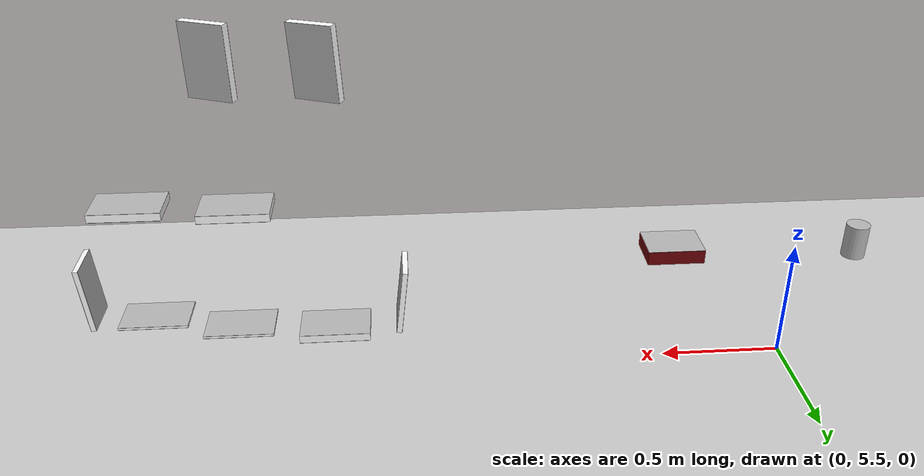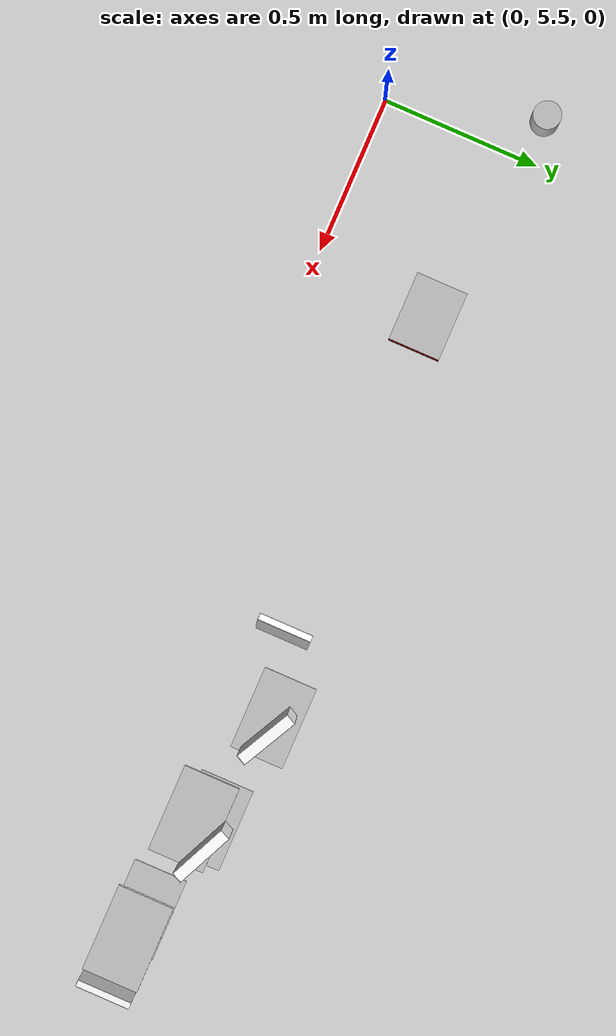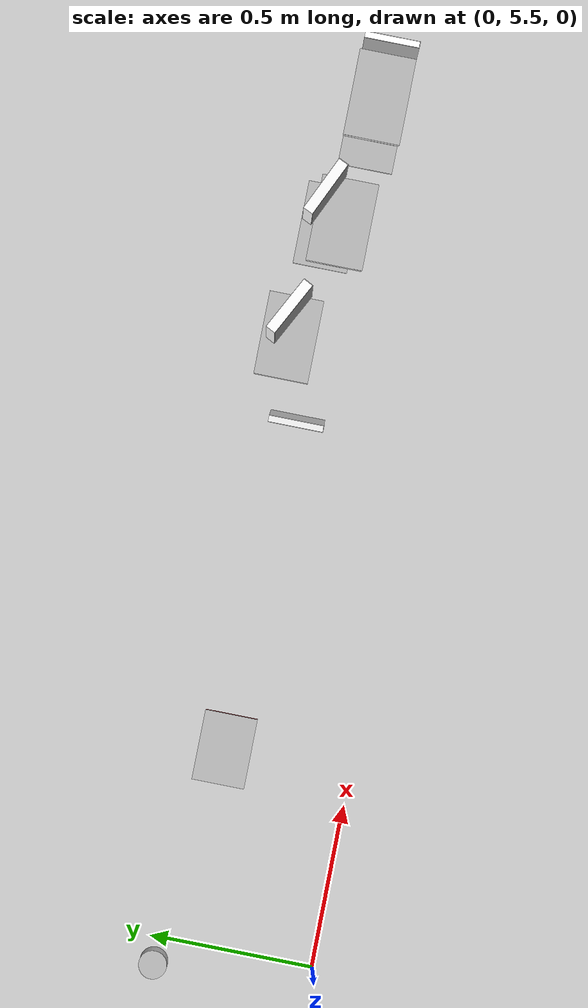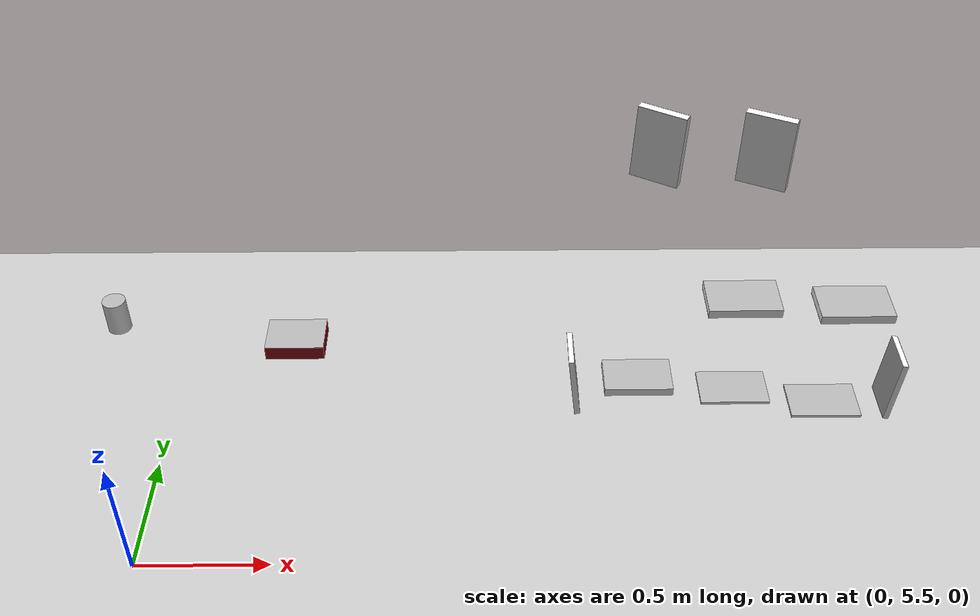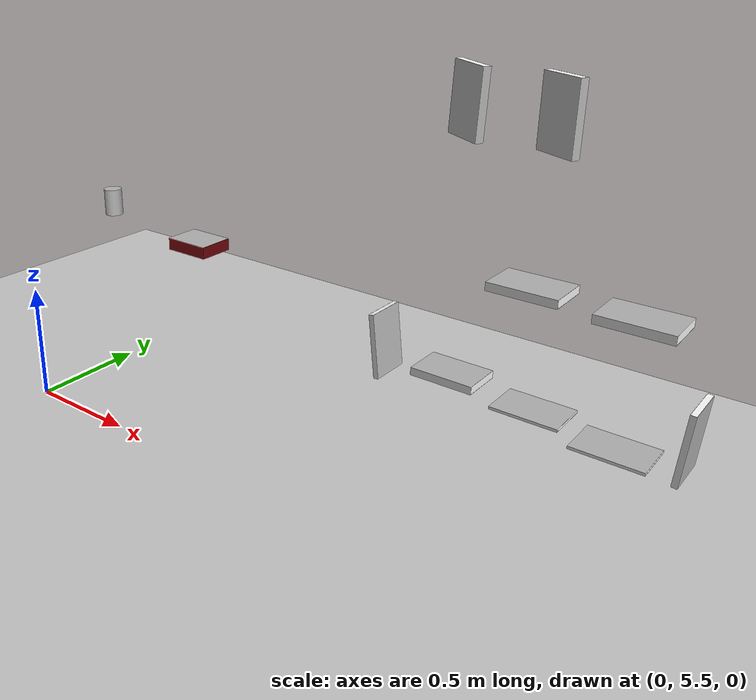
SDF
<sdf version="1.6">
 <world name="default">
  <model name="ground_plane">
   <static>1</static>
   <link name="link">
    <collision name="collision">
     <geometry><plane><normal>0 0 1</normal><size>100 100</size></plane></geometry>
     <surface>
      <contact><collide_bitmask>65535</collide_bitmask></contact>
      <friction><ode><mu>100</mu><mu2>50</mu2></ode></friction>
     </surface>
    </collision>
    <visual name="visual">
     <cast_shadows>0</cast_shadows>
     <geometry><plane><normal>0 0 1</normal><size>100 100</size></plane></geometry>
     <material>
      <script><uri>file://media/materials/scripts/gazebo.material</uri><name>Gazebo/Grey</name></script>
     </material>
    </visual>
   </link>
  </model>
  <model name="book_19">
   <link name="cover">
    <pose>0 -0.000108 0.015405 0 -0 0</pose>
    <visual name="visual">
     <geometry><box><size>0.245 0.16 0.03</size></box></geometry>
     <material>
      <script>
       <uri>model://book_19/materials/scripts</uri>
       <uri>model://book_19/materials/textures</uri>
       <name>book_19</name>
      </script>
     </material>
    </visual>
    <collision name="collision"><geometry><box><size>0.245 0.16 0.03</size></box></geometry></collision>
   </link>
   <link name="page">
    <pose>0 0.000608 0.015405 0 -0 0</pose>
    <visual name="visual">
     <geometry><box><size>0.24502 0.15862 0.028</size></box></geometry>
     <material>
      <lighting>1</lighting>
      <ambient>1 1 1 1</ambient>
      <diffuse>1 1 1 1</diffuse>
      <specular>0.01 0.01 0.01 1</specular>
      <emissive>0 0 0 1</emissive>
      <shader type="vertex"><normal_map>__default__</normal_map></shader>
     </material>
    </visual>
    <collision name="collision"><geometry><box><size>0.245 0.16 0.03</size></box></geometry></collision>
   </link>
   <static>1</static>
   <pose>2.16494 5.92603 1.48393 1.13971 -1.55591 -2e-06</pose>
  </model>
  <model name="book_13">
   <link name="cover">
    <pose>0 -0.000108 0.015405 0 -0 0</pose>
    <visual name="visual">
     <geometry><box><size>0.245 0.16 0.03</size></box></geometry>
     <material>
      <script>
       <uri>model://book_13/materials/scripts</uri>
       <uri>model://book_13/materials/textures</uri>
       <name>book_13</name>
      </script>
     </material>
    </visual>
    <collision name="collision"><geometry><box><size>0.245 0.16 0.03</size></box></geometry></collision>
   </link>
   <link name="page">
    <pose>0 0.000608 0.015405 0 -0 0</pose>
    <visual name="visual">
     <geometry><box><size>0.24502 0.15862 0.028</size></box></geometry>
     <material>
      <lighting>1</lighting>
      <ambient>1 1 1 1</ambient>
      <diffuse>1 1 1 1</diffuse>
      <specular>0.01 0.01 0.01 1</specular>
      <emissive>0 0 0 1</emissive>
      <shader type="vertex"><normal_map>__default__</normal_map></shader>
     </material>
    </visual>
    <collision name="collision"><geometry><box><size>0.245 0.16 0.03</size></box></geometry></collision>
   </link>
   <static>1</static>
   <pose>1.83674 5.95705 1.4833 0.931031 -1.5254 0.162157</pose>
  </model>
  <model name="book_10_0">
   <link name="cover">
    <pose>0 -0.000108 0.015405 0 -0 0</pose>
    <visual name="visual">
     <geometry><box><size>0.245 0.16 0.03</size></box></geometry>
     <material>
      <script>
       <uri>model://book_10/materials/scripts</uri>
       <uri>model://book_10/materials/textures</uri>
       <name>book_10</name>
      </script>
     </material>
    </visual>
    <collision name="collision"><geometry><box><size>0.245 0.16 0.03</size></box></geometry></collision>
   </link>
   <link name="page">
    <pose>0 0.000608 0.015405 0 -0 0</pose>
    <visual name="visual">
     <geometry><box><size>0.24502 0.15862 0.028</size></box></geometry>
     <material>
      <lighting>1</lighting>
      <ambient>1 1 1 1</ambient>
      <diffuse>1 1 1 1</diffuse>
      <specular>0.01 0.01 0.01 1</specular>
      <emissive>0 0 0 1</emissive>
      <shader type="vertex"><normal_map>__default__</normal_map></shader>
     </material>
    </visual>
    <collision name="collision"><geometry><box><size>0.245 0.16 0.03</size></box></geometry></collision>
   </link>
   <static>1</static>
   <pose>2.50783 5.81692 0.928012 0 -0 0</pose>
  </model>
  <model name="book_12">
   <link name="cover">
    <pose>0 -0.000108 0.015405 0 -0 0</pose>
    <visual name="visual">
     <geometry><box><size>0.245 0.16 0.03</size></box></geometry>
     <material>
      <script>
       <uri>model://book_12/materials/scripts</uri>
       <uri>model://book_12/materials/textures</uri>
       <name>book_12</name>
      </script>
     </material>
    </visual>
    <collision name="collision"><geometry><box><size>0.245 0.16 0.03</size></box></geometry></collision>
   </link>
   <link name="page">
    <pose>0 0.000608 0.015405 0 -0 0</pose>
    <visual name="visual">
     <geometry><box><size>0.24502 0.15862 0.028</size></box></geometry>
     <material>
      <lighting>1</lighting>
      <ambient>1 1 1 1</ambient>
      <diffuse>1 1 1 1</diffuse>
      <specular>0.01 0.01 0.01 1</specular>
      <emissive>0 0 0 1</emissive>
      <shader type="vertex"><normal_map>__default__</normal_map></shader>
     </material>
    </visual>
    <collision name="collision"><geometry><box><size>0.245 0.16 0.03</size></box></geometry></collision>
   </link>
   <static>1</static>
   <pose>2.14346 5.85092 0.928127 0 -0 0</pose>
  </model>
  <model name="book_9">
   <link name="cover">
    <pose>0 -0.000108 0.005 0 -0 0</pose>
    <visual name="visual">
     <geometry><box><size>0.245 0.16 0.01</size></box></geometry>
     <material>
      <script>
       <uri>model://book_9/materials/scripts</uri>
       <uri>model://book_9/materials/textures</uri>
       <name>book_9</name>
      </script>
     </material>
    </visual>
    <collision name="collision"><geometry><box><size>0.245 0.16 0.01</size></box></geometry></collision>
   </link>
   <link name="page">
    <pose>0 0.000608 0.005 0 -0 0</pose>
    <visual name="visual">
     <geometry><box><size>0.24502 0.15862 0.008</size></box></geometry>
     <material>
      <lighting>1</lighting>
      <ambient>1 1 1 1</ambient>
      <diffuse>1 1 1 1</diffuse>
      <specular>0.01 0.01 0.01 1</specular>
      <emissive>0 0 0 1</emissive>
      <shader type="vertex"><normal_map>__default__</normal_map></shader>
     </material>
    </visual>
    <collision name="collision"><geometry><box><size>0.245 0.16 0.008</size></box></geometry></collision>
   </link>
   <static>1</static>
   <pose>2.47861 5.81701 0.496004 0 -0 0</pose>
  </model>
  <model name="book_7">
   <link name="cover">
    <pose>0 -0.000108 0.005 0 -0 0</pose>
    <visual name="visual">
     <geometry><box><size>0.245 0.16 0.01</size></box></geometry>
     <material>
      <script>
       <uri>model://book_7/materials/scripts</uri>
       <uri>model://book_7/materials/textures</uri>
       <name>book_7</name>
      </script>
     </material>
    </visual>
    <collision name="collision"><geometry><box><size>0.245 0.16 0.01</size></box></geometry></collision>
   </link>
   <link name="page">
    <pose>0 0.000608 0.005 0 -0 0</pose>
    <visual name="visual">
     <geometry><box><size>0.24502 0.15862 0.008</size></box></geometry>
     <material>
      <lighting>1</lighting>
      <ambient>1 1 1 1</ambient>
      <diffuse>1 1 1 1</diffuse>
      <specular>0.01 0.01 0.01 1</specular>
      <emissive>0 0 0 1</emissive>
      <shader type="vertex"><normal_map>__default__</normal_map></shader>
     </material>
    </visual>
    <collision name="collision"><geometry><box><size>0.245 0.16 0.008</size></box></geometry></collision>
   </link>
   <static>1</static>
   <pose>2.16952 5.88911 0.494583 0 -0 0</pose>
  </model>
  <model name="book_2">
   <link name="cover">
    <pose>0 -0.000108 0.015405 0 -0 0</pose>
    <visual name="visual">
     <geometry><box><size>0.245 0.16 0.03</size></box></geometry>
     <material>
      <script>
       <uri>model://book_2/materials/scripts</uri>
       <uri>model://book_2/materials/textures</uri>
       <name>book_2</name>
      </script>
     </material>
    </visual>
    <collision name="collision"><geometry><box><size>0.245 0.16 0.03</size></box></geometry></collision>
   </link>
   <link name="page">
    <pose>0 0.000608 0.015405 0 -0 0</pose>
    <visual name="visual">
     <geometry><box><size>0.24502 0.15862 0.028</size></box></geometry>
     <material>
      <lighting>1</lighting>
      <ambient>1 1 1 1</ambient>
      <diffuse>1 1 1 1</diffuse>
      <specular>0.01 0.01 0.01 1</specular>
      <emissive>0 0 0 1</emissive>
      <shader type="vertex"><normal_map>__default__</normal_map></shader>
     </material>
    </visual>
    <collision name="collision"><geometry><box><size>0.245 0.16 0.03</size></box></geometry></collision>
   </link>
   <static>1</static>
   <pose>1.83068 5.93821 0.492808 0 -0 0</pose>
  </model>
  <model name="book_6">
   <link name="cover">
    <pose>0 -0.000108 0.01 0 -0 0</pose>
    <visual name="visual">
     <geometry><box><size>0.245 0.16 0.02</size></box></geometry>
     <material>
      <script>
       <uri>model://book_6/materials/scripts</uri>
       <uri>model://book_6/materials/textures</uri>
       <name>book_6</name>
      </script>
     </material>
    </visual>
    <collision name="collision"><geometry><box><size>0.245 0.16 0.02</size></box></geometry></collision>
   </link>
   <link name="page">
    <pose>0 0.000608 0.01 0 -0 0</pose>
    <visual name="visual">
     <geometry><box><size>0.24502 0.15862 0.018</size></box></geometry>
     <material>
      <lighting>1</lighting>
      <ambient>1 1 1 1</ambient>
      <diffuse>1 1 1 1</diffuse>
      <specular>0.01 0.01 0.01 1</specular>
      <emissive>0 0 0 1</emissive>
      <shader type="vertex"><normal_map>__default__</normal_map></shader>
     </material>
    </visual>
    <collision name="collision"><geometry><box><size>0.245 0.16 0.018</size></box></geometry></collision>
   </link>
   <static>1</static>
   <pose>2.70628 5.81202 0.615196 0 -1.48664 0</pose>
  </model>
  <model name="book_4">
   <link name="cover">
    <pose>0 -0.000108 0.01 0 -0 0</pose>
    <visual name="visual">
     <geometry><box><size>0.245 0.16 0.02</size></box></geometry>
     <material>
      <script>
       <uri>model://book_4/materials/scripts</uri>
       <uri>model://book_4/materials/textures</uri>
       <name>book_4</name>
      </script>
     </material>
     <cast_shadows>0</cast_shadows>
    </visual>
    <collision name="collision"><geometry><box><size>0.245 0.16 0.02</size></box></geometry></collision>
   </link>
   <link name="page">
    <pose>0 0.000608 0.01 0 -0 0</pose>
    <visual name="visual">
     <geometry><box><size>0.24502 0.15862 0.018</size></box></geometry>
     <material>
      <lighting>1</lighting>
      <ambient>1 1 1 1</ambient>
      <diffuse>1 1 1 1</diffuse>
      <specular>0.01 0.01 0.01 1</specular>
      <emissive>0 0 0 1</emissive>
      <shader type="vertex"><normal_map>__default__</normal_map></shader>
     </material>
     <cast_shadows>0</cast_shadows>
    </visual>
    <collision name="collision"><geometry><box><size>0.245 0.16 0.018</size></box></geometry></collision>
   </link>
   <static>1</static>
   <pose>1.60285 5.86813 0.595469 3.14159 -1.45431 3.14159</pose>
  </model>
  <model name="coffee_box_0">
   <link name="link_0">
    <visual name="visual">
     <pose>0 0 0.06 0 -0 0</pose>
     <geometry><cylinder><radius>0.04</radius><length>0.12</length></cylinder></geometry>
     <material>
      <script>
       <uri>model://coffee_box/materials/scripts</uri>
       <uri>model://coffee_box/materials/textures</uri>
       <name>coffee_pat</name>
      </script>
     </material>
    </visual>
    <collision name="collision">
     <geometry><cylinder><radius>0.04</radius><length>0.12</length></cylinder></geometry>
    </collision>
   </link>
   <static>1</static>
   <pose>0.005017 5.96661 0.739051 0 -0 0</pose>
  </model>
  <model name="biscuit_box">
   <link name="link">
    <pose>0 0 0.025 0 -0 0</pose>
    <visual name="visual">
     <geometry><box><size>0.2 0.15 0.05</size></box></geometry>
     <material>
      <ambient>0.423 0.019 0.035 1</ambient>
      <diffuse>0.423 0.019 0.035 1</diffuse>
      <specular>0.01 0.01 0.01 1</specular>
      <emissive>0 0 0 1</emissive>
     </material>
    </visual>
    <collision name="collision"><geometry><box><size>0.1 0.1 0.15</size></box></geometry></collision>
   </link>
   <link name="link_1">
    <pose>0 0 0.05 0 -0 0</pose>
    <visual name="visual">
     <geometry><box><size>0.2 0.15 0.001</size></box></geometry>
     <material>
      <script>
       <uri>model://biscuit_box/materials/scripts</uri>
       <uri>model://biscuit_box/materials/textures</uri>
       <name>biscuit_pat</name>
      </script>
     </material>
    </visual>
    <collision name="collision"><geometry><box><size>0.1 0.1 0.15</size></box></geometry></collision>
   </link>
   <static>1</static>
   <pose>0.632405 5.88677 0.723007 0 -0 0</pose>
  </model>
 </world>
</sdf>
